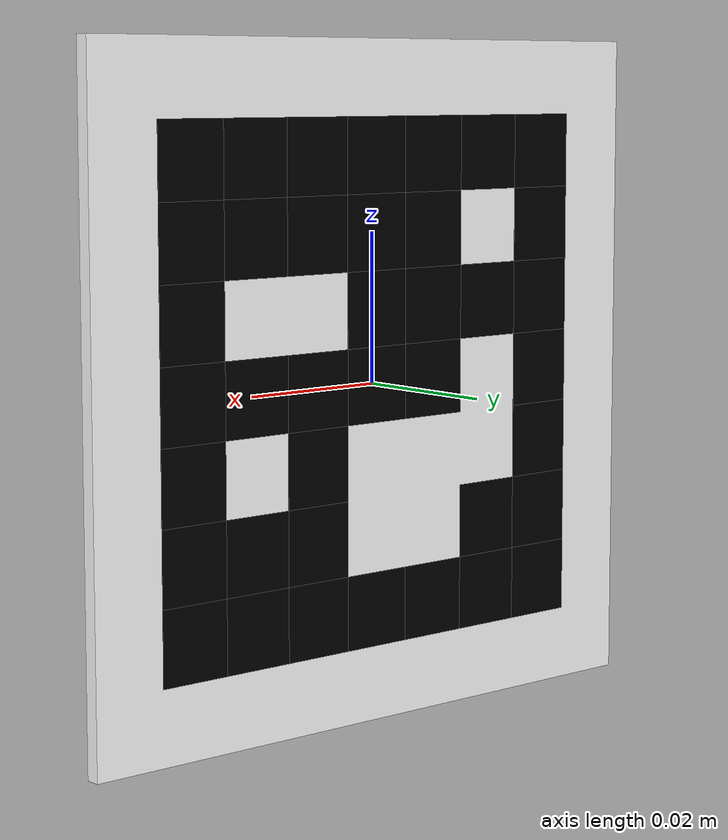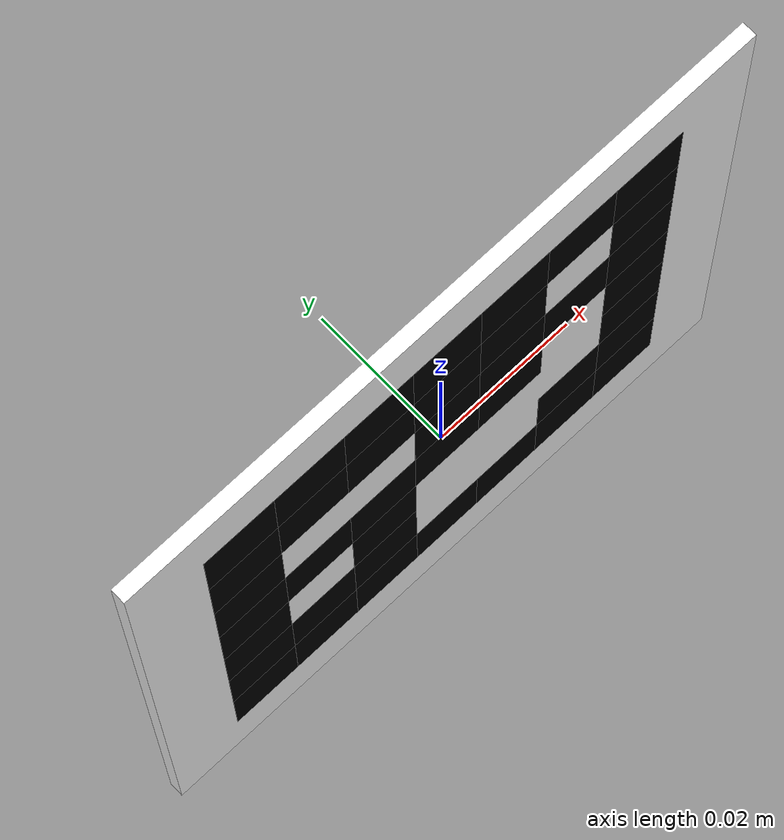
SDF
<?xml version="1.0"?>
<sdf version="1.6">
  <model name="aruco_5x5_250_id1">
    <static>true</static>
    <link name="board">
      <!-- DICT_5X5_250 marker id=1, borderBits=1. Rendered as geometry so Gazebo does not depend on texture/material loading. -->
      <!-- Back-side cells are mirrored in X so cameras viewing the rear face still see the canonical marker, not a mirror image. -->
      <collision name="collision">
        <geometry>
          <box>
            <size>0.09 0.002 0.09</size>
          </box>
        </geometry>
      </collision>

      <visual name="white_backing">
        <geometry>
          <box>
            <size>0.09 0.002 0.09</size>
          </box>
        </geometry>
        <material>
          <ambient>1 1 1 1</ambient>
          <diffuse>1 1 1 1</diffuse>
          <specular>0.1 0.1 0.1 1</specular>
        </material>
      </visual>

      <visual name="front_black_r0_c0">
        <pose>-0.0300 -0.00101 0.0300 0 0 0</pose>
        <geometry>
          <box>
            <size>0.0100 0.00002 0.0100</size>
          </box>
        </geometry>
        <material>
          <ambient>0 0 0 1</ambient>
          <diffuse>0 0 0 1</diffuse>
          <specular>0 0 0 1</specular>
        </material>
      </visual>
      <visual name="back_black_r0_c0_mirrored">
        <pose>0.0300 0.00101 0.0300 0 0 0</pose>
        <geometry>
          <box>
            <size>0.0100 0.00002 0.0100</size>
          </box>
        </geometry>
        <material>
          <ambient>0 0 0 1</ambient>
          <diffuse>0 0 0 1</diffuse>
          <specular>0 0 0 1</specular>
        </material>
      </visual>
      <visual name="front_black_r0_c1">
        <pose>-0.0200 -0.00101 0.0300 0 0 0</pose>
        <geometry>
          <box>
            <size>0.0100 0.00002 0.0100</size>
          </box>
        </geometry>
        <material>
          <ambient>0 0 0 1</ambient>
          <diffuse>0 0 0 1</diffuse>
          <specular>0 0 0 1</specular>
        </material>
      </visual>
      <visual name="back_black_r0_c1_mirrored">
        <pose>0.0200 0.00101 0.0300 0 0 0</pose>
        <geometry>
          <box>
            <size>0.0100 0.00002 0.0100</size>
          </box>
        </geometry>
        <material>
          <ambient>0 0 0 1</ambient>
          <diffuse>0 0 0 1</diffuse>
          <specular>0 0 0 1</specular>
        </material>
      </visual>
      <visual name="front_black_r0_c2">
        <pose>-0.0100 -0.00101 0.0300 0 0 0</pose>
        <geometry>
          <box>
            <size>0.0100 0.00002 0.0100</size>
          </box>
        </geometry>
        <material>
          <ambient>0 0 0 1</ambient>
          <diffuse>0 0 0 1</diffuse>
          <specular>0 0 0 1</specular>
        </material>
      </visual>
      <visual name="back_black_r0_c2_mirrored">
        <pose>0.0100 0.00101 0.0300 0 0 0</pose>
        <geometry>
          <box>
            <size>0.0100 0.00002 0.0100</size>
          </box>
        </geometry>
        <material>
          <ambient>0 0 0 1</ambient>
          <diffuse>0 0 0 1</diffuse>
          <specular>0 0 0 1</specular>
        </material>
      </visual>
      <visual name="front_black_r0_c3">
        <pose>0.0000 -0.00101 0.0300 0 0 0</pose>
        <geometry>
          <box>
            <size>0.0100 0.00002 0.0100</size>
          </box>
        </geometry>
        <material>
          <ambient>0 0 0 1</ambient>
          <diffuse>0 0 0 1</diffuse>
          <specular>0 0 0 1</specular>
        </material>
      </visual>
      <visual name="back_black_r0_c3_mirrored">
        <pose>0.0000 0.00101 0.0300 0 0 0</pose>
        <geometry>
          <box>
            <size>0.0100 0.00002 0.0100</size>
          </box>
        </geometry>
        <material>
          <ambient>0 0 0 1</ambient>
          <diffuse>0 0 0 1</diffuse>
          <specular>0 0 0 1</specular>
        </material>
      </visual>
      <visual name="front_black_r0_c4">
        <pose>0.0100 -0.00101 0.0300 0 0 0</pose>
        <geometry>
          <box>
            <size>0.0100 0.00002 0.0100</size>
          </box>
        </geometry>
        <material>
          <ambient>0 0 0 1</ambient>
          <diffuse>0 0 0 1</diffuse>
          <specular>0 0 0 1</specular>
        </material>
      </visual>
      <visual name="back_black_r0_c4_mirrored">
        <pose>-0.0100 0.00101 0.0300 0 0 0</pose>
        <geometry>
          <box>
            <size>0.0100 0.00002 0.0100</size>
          </box>
        </geometry>
        <material>
          <ambient>0 0 0 1</ambient>
          <diffuse>0 0 0 1</diffuse>
          <specular>0 0 0 1</specular>
        </material>
      </visual>
      <visual name="front_black_r0_c5">
        <pose>0.0200 -0.00101 0.0300 0 0 0</pose>
        <geometry>
          <box>
            <size>0.0100 0.00002 0.0100</size>
          </box>
        </geometry>
        <material>
          <ambient>0 0 0 1</ambient>
          <diffuse>0 0 0 1</diffuse>
          <specular>0 0 0 1</specular>
        </material>
      </visual>
      <visual name="back_black_r0_c5_mirrored">
        <pose>-0.0200 0.00101 0.0300 0 0 0</pose>
        <geometry>
          <box>
            <size>0.0100 0.00002 0.0100</size>
          </box>
        </geometry>
        <material>
          <ambient>0 0 0 1</ambient>
          <diffuse>0 0 0 1</diffuse>
          <specular>0 0 0 1</specular>
        </material>
      </visual>
      <visual name="front_black_r0_c6">
        <pose>0.0300 -0.00101 0.0300 0 0 0</pose>
        <geometry>
          <box>
            <size>0.0100 0.00002 0.0100</size>
          </box>
        </geometry>
        <material>
          <ambient>0 0 0 1</ambient>
          <diffuse>0 0 0 1</diffuse>
          <specular>0 0 0 1</specular>
        </material>
      </visual>
      <visual name="back_black_r0_c6_mirrored">
        <pose>-0.0300 0.00101 0.0300 0 0 0</pose>
        <geometry>
          <box>
            <size>0.0100 0.00002 0.0100</size>
          </box>
        </geometry>
        <material>
          <ambient>0 0 0 1</ambient>
          <diffuse>0 0 0 1</diffuse>
          <specular>0 0 0 1</specular>
        </material>
      </visual>
      <visual name="front_black_r1_c0">
        <pose>-0.0300 -0.00101 0.0200 0 0 0</pose>
        <geometry>
          <box>
            <size>0.0100 0.00002 0.0100</size>
          </box>
        </geometry>
        <material>
          <ambient>0 0 0 1</ambient>
          <diffuse>0 0 0 1</diffuse>
          <specular>0 0 0 1</specular>
        </material>
      </visual>
      <visual name="back_black_r1_c0_mirrored">
        <pose>0.0300 0.00101 0.0200 0 0 0</pose>
        <geometry>
          <box>
            <size>0.0100 0.00002 0.0100</size>
          </box>
        </geometry>
        <material>
          <ambient>0 0 0 1</ambient>
          <diffuse>0 0 0 1</diffuse>
          <specular>0 0 0 1</specular>
        </material>
      </visual>
      <visual name="front_black_r1_c1">
        <pose>-0.0200 -0.00101 0.0200 0 0 0</pose>
        <geometry>
          <box>
            <size>0.0100 0.00002 0.0100</size>
          </box>
        </geometry>
        <material>
          <ambient>0 0 0 1</ambient>
          <diffuse>0 0 0 1</diffuse>
          <specular>0 0 0 1</specular>
        </material>
      </visual>
      <visual name="back_black_r1_c1_mirrored">
        <pose>0.0200 0.00101 0.0200 0 0 0</pose>
        <geometry>
          <box>
            <size>0.0100 0.00002 0.0100</size>
          </box>
        </geometry>
        <material>
          <ambient>0 0 0 1</ambient>
          <diffuse>0 0 0 1</diffuse>
          <specular>0 0 0 1</specular>
        </material>
      </visual>
      <visual name="front_black_r1_c2">
        <pose>-0.0100 -0.00101 0.0200 0 0 0</pose>
        <geometry>
          <box>
            <size>0.0100 0.00002 0.0100</size>
          </box>
        </geometry>
        <material>
          <ambient>0 0 0 1</ambient>
          <diffuse>0 0 0 1</diffuse>
          <specular>0 0 0 1</specular>
        </material>
      </visual>
      <visual name="back_black_r1_c2_mirrored">
        <pose>0.0100 0.00101 0.0200 0 0 0</pose>
        <geometry>
          <box>
            <size>0.0100 0.00002 0.0100</size>
          </box>
        </geometry>
        <material>
          <ambient>0 0 0 1</ambient>
          <diffuse>0 0 0 1</diffuse>
          <specular>0 0 0 1</specular>
        </material>
      </visual>
      <visual name="front_black_r1_c3">
        <pose>0.0000 -0.00101 0.0200 0 0 0</pose>
        <geometry>
          <box>
            <size>0.0100 0.00002 0.0100</size>
          </box>
        </geometry>
        <material>
          <ambient>0 0 0 1</ambient>
          <diffuse>0 0 0 1</diffuse>
          <specular>0 0 0 1</specular>
        </material>
      </visual>
      <visual name="back_black_r1_c3_mirrored">
        <pose>0.0000 0.00101 0.0200 0 0 0</pose>
        <geometry>
          <box>
            <size>0.0100 0.00002 0.0100</size>
          </box>
        </geometry>
        <material>
          <ambient>0 0 0 1</ambient>
          <diffuse>0 0 0 1</diffuse>
          <specular>0 0 0 1</specular>
        </material>
      </visual>
      <visual name="front_black_r1_c4">
        <pose>0.0100 -0.00101 0.0200 0 0 0</pose>
        <geometry>
          <box>
            <size>0.0100 0.00002 0.0100</size>
          </box>
        </geometry>
        <material>
          <ambient>0 0 0 1</ambient>
          <diffuse>0 0 0 1</diffuse>
          <specular>0 0 0 1</specular>
        </material>
      </visual>
      <visual name="back_black_r1_c4_mirrored">
        <pose>-0.0100 0.00101 0.0200 0 0 0</pose>
        <geometry>
          <box>
            <size>0.0100 0.00002 0.0100</size>
          </box>
        </geometry>
        <material>
          <ambient>0 0 0 1</ambient>
          <diffuse>0 0 0 1</diffuse>
          <specular>0 0 0 1</specular>
        </material>
      </visual>
      <visual name="front_black_r1_c6">
        <pose>0.0300 -0.00101 0.0200 0 0 0</pose>
        <geometry>
          <box>
            <size>0.0100 0.00002 0.0100</size>
          </box>
        </geometry>
        <material>
          <ambient>0 0 0 1</ambient>
          <diffuse>0 0 0 1</diffuse>
          <specular>0 0 0 1</specular>
        </material>
      </visual>
      <visual name="back_black_r1_c6_mirrored">
        <pose>-0.0300 0.00101 0.0200 0 0 0</pose>
        <geometry>
          <box>
            <size>0.0100 0.00002 0.0100</size>
          </box>
        </geometry>
        <material>
          <ambient>0 0 0 1</ambient>
          <diffuse>0 0 0 1</diffuse>
          <specular>0 0 0 1</specular>
        </material>
      </visual>
      <visual name="front_black_r2_c0">
        <pose>-0.0300 -0.00101 0.0100 0 0 0</pose>
        <geometry>
          <box>
            <size>0.0100 0.00002 0.0100</size>
          </box>
        </geometry>
        <material>
          <ambient>0 0 0 1</ambient>
          <diffuse>0 0 0 1</diffuse>
          <specular>0 0 0 1</specular>
        </material>
      </visual>
      <visual name="back_black_r2_c0_mirrored">
        <pose>0.0300 0.00101 0.0100 0 0 0</pose>
        <geometry>
          <box>
            <size>0.0100 0.00002 0.0100</size>
          </box>
        </geometry>
        <material>
          <ambient>0 0 0 1</ambient>
          <diffuse>0 0 0 1</diffuse>
          <specular>0 0 0 1</specular>
        </material>
      </visual>
      <visual name="front_black_r2_c3">
        <pose>0.0000 -0.00101 0.0100 0 0 0</pose>
        <geometry>
          <box>
            <size>0.0100 0.00002 0.0100</size>
          </box>
        </geometry>
        <material>
          <ambient>0 0 0 1</ambient>
          <diffuse>0 0 0 1</diffuse>
          <specular>0 0 0 1</specular>
        </material>
      </visual>
      <visual name="back_black_r2_c3_mirrored">
        <pose>0.0000 0.00101 0.0100 0 0 0</pose>
        <geometry>
          <box>
            <size>0.0100 0.00002 0.0100</size>
          </box>
        </geometry>
        <material>
          <ambient>0 0 0 1</ambient>
          <diffuse>0 0 0 1</diffuse>
          <specular>0 0 0 1</specular>
        </material>
      </visual>
      <visual name="front_black_r2_c4">
        <pose>0.0100 -0.00101 0.0100 0 0 0</pose>
        <geometry>
          <box>
            <size>0.0100 0.00002 0.0100</size>
          </box>
        </geometry>
        <material>
          <ambient>0 0 0 1</ambient>
          <diffuse>0 0 0 1</diffuse>
          <specular>0 0 0 1</specular>
        </material>
      </visual>
      <visual name="back_black_r2_c4_mirrored">
        <pose>-0.0100 0.00101 0.0100 0 0 0</pose>
        <geometry>
          <box>
            <size>0.0100 0.00002 0.0100</size>
          </box>
        </geometry>
        <material>
          <ambient>0 0 0 1</ambient>
          <diffuse>0 0 0 1</diffuse>
          <specular>0 0 0 1</specular>
        </material>
      </visual>
      <visual name="front_black_r2_c5">
        <pose>0.0200 -0.00101 0.0100 0 0 0</pose>
        <geometry>
          <box>
            <size>0.0100 0.00002 0.0100</size>
          </box>
        </geometry>
        <material>
          <ambient>0 0 0 1</ambient>
          <diffuse>0 0 0 1</diffuse>
          <specular>0 0 0 1</specular>
        </material>
      </visual>
      <visual name="back_black_r2_c5_mirrored">
        <pose>-0.0200 0.00101 0.0100 0 0 0</pose>
        <geometry>
          <box>
            <size>0.0100 0.00002 0.0100</size>
          </box>
        </geometry>
        <material>
          <ambient>0 0 0 1</ambient>
          <diffuse>0 0 0 1</diffuse>
          <specular>0 0 0 1</specular>
        </material>
      </visual>
      <visual name="front_black_r2_c6">
        <pose>0.0300 -0.00101 0.0100 0 0 0</pose>
        <geometry>
          <box>
            <size>0.0100 0.00002 0.0100</size>
          </box>
        </geometry>
        <material>
          <ambient>0 0 0 1</ambient>
          <diffuse>0 0 0 1</diffuse>
          <specular>0 0 0 1</specular>
        </material>
      </visual>
      <visual name="back_black_r2_c6_mirrored">
        <pose>-0.0300 0.00101 0.0100 0 0 0</pose>
        <geometry>
          <box>
            <size>0.0100 0.00002 0.0100</size>
          </box>
        </geometry>
        <material>
          <ambient>0 0 0 1</ambient>
          <diffuse>0 0 0 1</diffuse>
          <specular>0 0 0 1</specular>
        </material>
      </visual>
      <visual name="front_black_r3_c0">
        <pose>-0.0300 -0.00101 0.0000 0 0 0</pose>
        <geometry>
          <box>
            <size>0.0100 0.00002 0.0100</size>
          </box>
        </geometry>
        <material>
          <ambient>0 0 0 1</ambient>
          <diffuse>0 0 0 1</diffuse>
          <specular>0 0 0 1</specular>
        </material>
      </visual>
      <visual name="back_black_r3_c0_mirrored">
        <pose>0.0300 0.00101 0.0000 0 0 0</pose>
        <geometry>
          <box>
            <size>0.0100 0.00002 0.0100</size>
          </box>
        </geometry>
        <material>
          <ambient>0 0 0 1</ambient>
          <diffuse>0 0 0 1</diffuse>
          <specular>0 0 0 1</specular>
        </material>
      </visual>
      <visual name="front_black_r3_c1">
        <pose>-0.0200 -0.00101 0.0000 0 0 0</pose>
        <geometry>
          <box>
            <size>0.0100 0.00002 0.0100</size>
          </box>
        </geometry>
        <material>
          <ambient>0 0 0 1</ambient>
          <diffuse>0 0 0 1</diffuse>
          <specular>0 0 0 1</specular>
        </material>
      </visual>
      <visual name="back_black_r3_c1_mirrored">
        <pose>0.0200 0.00101 0.0000 0 0 0</pose>
        <geometry>
          <box>
            <size>0.0100 0.00002 0.0100</size>
          </box>
        </geometry>
        <material>
          <ambient>0 0 0 1</ambient>
          <diffuse>0 0 0 1</diffuse>
          <specular>0 0 0 1</specular>
        </material>
      </visual>
      <visual name="front_black_r3_c2">
        <pose>-0.0100 -0.00101 0.0000 0 0 0</pose>
        <geometry>
          <box>
            <size>0.0100 0.00002 0.0100</size>
          </box>
        </geometry>
        <material>
          <ambient>0 0 0 1</ambient>
          <diffuse>0 0 0 1</diffuse>
          <specular>0 0 0 1</specular>
        </material>
      </visual>
      <visual name="back_black_r3_c2_mirrored">
        <pose>0.0100 0.00101 0.0000 0 0 0</pose>
        <geometry>
          <box>
            <size>0.0100 0.00002 0.0100</size>
          </box>
        </geometry>
        <material>
          <ambient>0 0 0 1</ambient>
          <diffuse>0 0 0 1</diffuse>
          <specular>0 0 0 1</specular>
        </material>
      </visual>
      <visual name="front_black_r3_c3">
        <pose>0.0000 -0.00101 0.0000 0 0 0</pose>
        <geometry>
          <box>
            <size>0.0100 0.00002 0.0100</size>
          </box>
        </geometry>
        <material>
          <ambient>0 0 0 1</ambient>
          <diffuse>0 0 0 1</diffuse>
          <specular>0 0 0 1</specular>
        </material>
      </visual>
      <visual name="back_black_r3_c3_mirrored">
        <pose>0.0000 0.00101 0.0000 0 0 0</pose>
        <geometry>
          <box>
            <size>0.0100 0.00002 0.0100</size>
          </box>
        </geometry>
        <material>
          <ambient>0 0 0 1</ambient>
          <diffuse>0 0 0 1</diffuse>
          <specular>0 0 0 1</specular>
        </material>
      </visual>
      <visual name="front_black_r3_c4">
        <pose>0.0100 -0.00101 0.0000 0 0 0</pose>
        <geometry>
          <box>
            <size>0.0100 0.00002 0.0100</size>
          </box>
        </geometry>
        <material>
          <ambient>0 0 0 1</ambient>
          <diffuse>0 0 0 1</diffuse>
          <specular>0 0 0 1</specular>
        </material>
      </visual>
      <visual name="back_black_r3_c4_mirrored">
        <pose>-0.0100 0.00101 0.0000 0 0 0</pose>
        <geometry>
          <box>
            <size>0.0100 0.00002 0.0100</size>
          </box>
        </geometry>
        <material>
          <ambient>0 0 0 1</ambient>
          <diffuse>0 0 0 1</diffuse>
          <specular>0 0 0 1</specular>
        </material>
      </visual>
      <visual name="front_black_r3_c6">
        <pose>0.0300 -0.00101 0.0000 0 0 0</pose>
        <geometry>
          <box>
            <size>0.0100 0.00002 0.0100</size>
          </box>
        </geometry>
        <material>
          <ambient>0 0 0 1</ambient>
          <diffuse>0 0 0 1</diffuse>
          <specular>0 0 0 1</specular>
        </material>
      </visual>
      <visual name="back_black_r3_c6_mirrored">
        <pose>-0.0300 0.00101 0.0000 0 0 0</pose>
        <geometry>
          <box>
            <size>0.0100 0.00002 0.0100</size>
          </box>
        </geometry>
        <material>
          <ambient>0 0 0 1</ambient>
          <diffuse>0 0 0 1</diffuse>
          <specular>0 0 0 1</specular>
        </material>
      </visual>
      <visual name="front_black_r4_c0">
        <pose>-0.0300 -0.00101 -0.0100 0 0 0</pose>
        <geometry>
          <box>
            <size>0.0100 0.00002 0.0100</size>
          </box>
        </geometry>
        <material>
          <ambient>0 0 0 1</ambient>
          <diffuse>0 0 0 1</diffuse>
          <specular>0 0 0 1</specular>
        </material>
      </visual>
      <visual name="back_black_r4_c0_mirrored">
        <pose>0.0300 0.00101 -0.0100 0 0 0</pose>
        <geometry>
          <box>
            <size>0.0100 0.00002 0.0100</size>
          </box>
        </geometry>
        <material>
          <ambient>0 0 0 1</ambient>
          <diffuse>0 0 0 1</diffuse>
          <specular>0 0 0 1</specular>
        </material>
      </visual>
      <visual name="front_black_r4_c2">
        <pose>-0.0100 -0.00101 -0.0100 0 0 0</pose>
        <geometry>
          <box>
            <size>0.0100 0.00002 0.0100</size>
          </box>
        </geometry>
        <material>
          <ambient>0 0 0 1</ambient>
          <diffuse>0 0 0 1</diffuse>
          <specular>0 0 0 1</specular>
        </material>
      </visual>
      <visual name="back_black_r4_c2_mirrored">
        <pose>0.0100 0.00101 -0.0100 0 0 0</pose>
        <geometry>
          <box>
            <size>0.0100 0.00002 0.0100</size>
          </box>
        </geometry>
        <material>
          <ambient>0 0 0 1</ambient>
          <diffuse>0 0 0 1</diffuse>
          <specular>0 0 0 1</specular>
        </material>
      </visual>
      <visual name="front_black_r4_c6">
        <pose>0.0300 -0.00101 -0.0100 0 0 0</pose>
        <geometry>
          <box>
            <size>0.0100 0.00002 0.0100</size>
          </box>
        </geometry>
        <material>
          <ambient>0 0 0 1</ambient>
          <diffuse>0 0 0 1</diffuse>
          <specular>0 0 0 1</specular>
        </material>
      </visual>
      <visual name="back_black_r4_c6_mirrored">
        <pose>-0.0300 0.00101 -0.0100 0 0 0</pose>
        <geometry>
          <box>
            <size>0.0100 0.00002 0.0100</size>
          </box>
        </geometry>
        <material>
          <ambient>0 0 0 1</ambient>
          <diffuse>0 0 0 1</diffuse>
          <specular>0 0 0 1</specular>
        </material>
      </visual>
      <visual name="front_black_r5_c0">
        <pose>-0.0300 -0.00101 -0.0200 0 0 0</pose>
        <geometry>
          <box>
            <size>0.0100 0.00002 0.0100</size>
          </box>
        </geometry>
        <material>
          <ambient>0 0 0 1</ambient>
          <diffuse>0 0 0 1</diffuse>
          <specular>0 0 0 1</specular>
        </material>
      </visual>
      <visual name="back_black_r5_c0_mirrored">
        <pose>0.0300 0.00101 -0.0200 0 0 0</pose>
        <geometry>
          <box>
            <size>0.0100 0.00002 0.0100</size>
          </box>
        </geometry>
        <material>
          <ambient>0 0 0 1</ambient>
          <diffuse>0 0 0 1</diffuse>
          <specular>0 0 0 1</specular>
        </material>
      </visual>
      <visual name="front_black_r5_c1">
        <pose>-0.0200 -0.00101 -0.0200 0 0 0</pose>
        <geometry>
          <box>
            <size>0.0100 0.00002 0.0100</size>
          </box>
        </geometry>
        <material>
          <ambient>0 0 0 1</ambient>
          <diffuse>0 0 0 1</diffuse>
          <specular>0 0 0 1</specular>
        </material>
      </visual>
      <visual name="back_black_r5_c1_mirrored">
        <pose>0.0200 0.00101 -0.0200 0 0 0</pose>
        <geometry>
          <box>
            <size>0.0100 0.00002 0.0100</size>
          </box>
        </geometry>
        <material>
          <ambient>0 0 0 1</ambient>
          <diffuse>0 0 0 1</diffuse>
          <specular>0 0 0 1</specular>
        </material>
      </visual>
      <visual name="front_black_r5_c2">
        <pose>-0.0100 -0.00101 -0.0200 0 0 0</pose>
        <geometry>
          <box>
            <size>0.0100 0.00002 0.0100</size>
          </box>
        </geometry>
        <material>
          <ambient>0 0 0 1</ambient>
          <diffuse>0 0 0 1</diffuse>
          <specular>0 0 0 1</specular>
        </material>
      </visual>
      <visual name="back_black_r5_c2_mirrored">
        <pose>0.0100 0.00101 -0.0200 0 0 0</pose>
        <geometry>
          <box>
            <size>0.0100 0.00002 0.0100</size>
          </box>
        </geometry>
        <material>
          <ambient>0 0 0 1</ambient>
          <diffuse>0 0 0 1</diffuse>
          <specular>0 0 0 1</specular>
        </material>
      </visual>
      <visual name="front_black_r5_c5">
        <pose>0.0200 -0.00101 -0.0200 0 0 0</pose>
        <geometry>
          <box>
            <size>0.0100 0.00002 0.0100</size>
          </box>
        </geometry>
        <material>
          <ambient>0 0 0 1</ambient>
          <diffuse>0 0 0 1</diffuse>
          <specular>0 0 0 1</specular>
        </material>
      </visual>
      <visual name="back_black_r5_c5_mirrored">
        <pose>-0.0200 0.00101 -0.0200 0 0 0</pose>
        <geometry>
          <box>
            <size>0.0100 0.00002 0.0100</size>
          </box>
        </geometry>
        <material>
          <ambient>0 0 0 1</ambient>
          <diffuse>0 0 0 1</diffuse>
          <specular>0 0 0 1</specular>
        </material>
      </visual>
      <visual name="front_black_r5_c6">
        <pose>0.0300 -0.00101 -0.0200 0 0 0</pose>
        <geometry>
          <box>
            <size>0.0100 0.00002 0.0100</size>
          </box>
        </geometry>
        <material>
          <ambient>0 0 0 1</ambient>
          <diffuse>0 0 0 1</diffuse>
          <specular>0 0 0 1</specular>
        </material>
      </visual>
      <visual name="back_black_r5_c6_mirrored">
        <pose>-0.0300 0.00101 -0.0200 0 0 0</pose>
        <geometry>
          <box>
            <size>0.0100 0.00002 0.0100</size>
          </box>
        </geometry>
        <material>
          <ambient>0 0 0 1</ambient>
          <diffuse>0 0 0 1</diffuse>
          <specular>0 0 0 1</specular>
        </material>
      </visual>
      <visual name="front_black_r6_c0">
        <pose>-0.0300 -0.00101 -0.0300 0 0 0</pose>
        <geometry>
          <box>
            <size>0.0100 0.00002 0.0100</size>
          </box>
        </geometry>
        <material>
          <ambient>0 0 0 1</ambient>
          <diffuse>0 0 0 1</diffuse>
          <specular>0 0 0 1</specular>
        </material>
      </visual>
      <visual name="back_black_r6_c0_mirrored">
        <pose>0.0300 0.00101 -0.0300 0 0 0</pose>
        <geometry>
          <box>
            <size>0.0100 0.00002 0.0100</size>
          </box>
        </geometry>
        <material>
          <ambient>0 0 0 1</ambient>
          <diffuse>0 0 0 1</diffuse>
          <specular>0 0 0 1</specular>
        </material>
      </visual>
      <visual name="front_black_r6_c1">
        <pose>-0.0200 -0.00101 -0.0300 0 0 0</pose>
        <geometry>
          <box>
            <size>0.0100 0.00002 0.0100</size>
          </box>
        </geometry>
        <material>
          <ambient>0 0 0 1</ambient>
          <diffuse>0 0 0 1</diffuse>
          <specular>0 0 0 1</specular>
        </material>
      </visual>
      <visual name="back_black_r6_c1_mirrored">
        <pose>0.0200 0.00101 -0.0300 0 0 0</pose>
        <geometry>
          <box>
            <size>0.0100 0.00002 0.0100</size>
          </box>
        </geometry>
        <material>
          <ambient>0 0 0 1</ambient>
          <diffuse>0 0 0 1</diffuse>
          <specular>0 0 0 1</specular>
        </material>
      </visual>
      <visual name="front_black_r6_c2">
        <pose>-0.0100 -0.00101 -0.0300 0 0 0</pose>
        <geometry>
          <box>
            <size>0.0100 0.00002 0.0100</size>
          </box>
        </geometry>
        <material>
          <ambient>0 0 0 1</ambient>
          <diffuse>0 0 0 1</diffuse>
          <specular>0 0 0 1</specular>
        </material>
      </visual>
      <visual name="back_black_r6_c2_mirrored">
        <pose>0.0100 0.00101 -0.0300 0 0 0</pose>
        <geometry>
          <box>
            <size>0.0100 0.00002 0.0100</size>
          </box>
        </geometry>
        <material>
          <ambient>0 0 0 1</ambient>
          <diffuse>0 0 0 1</diffuse>
          <specular>0 0 0 1</specular>
        </material>
      </visual>
      <visual name="front_black_r6_c3">
        <pose>0.0000 -0.00101 -0.0300 0 0 0</pose>
        <geometry>
          <box>
            <size>0.0100 0.00002 0.0100</size>
          </box>
        </geometry>
        <material>
          <ambient>0 0 0 1</ambient>
          <diffuse>0 0 0 1</diffuse>
          <specular>0 0 0 1</specular>
        </material>
      </visual>
      <visual name="back_black_r6_c3_mirrored">
        <pose>0.0000 0.00101 -0.0300 0 0 0</pose>
        <geometry>
          <box>
            <size>0.0100 0.00002 0.0100</size>
          </box>
        </geometry>
        <material>
          <ambient>0 0 0 1</ambient>
          <diffuse>0 0 0 1</diffuse>
          <specular>0 0 0 1</specular>
        </material>
      </visual>
      <visual name="front_black_r6_c4">
        <pose>0.0100 -0.00101 -0.0300 0 0 0</pose>
        <geometry>
          <box>
            <size>0.0100 0.00002 0.0100</size>
          </box>
        </geometry>
        <material>
          <ambient>0 0 0 1</ambient>
          <diffuse>0 0 0 1</diffuse>
          <specular>0 0 0 1</specular>
        </material>
      </visual>
      <visual name="back_black_r6_c4_mirrored">
        <pose>-0.0100 0.00101 -0.0300 0 0 0</pose>
        <geometry>
          <box>
            <size>0.0100 0.00002 0.0100</size>
          </box>
        </geometry>
        <material>
          <ambient>0 0 0 1</ambient>
          <diffuse>0 0 0 1</diffuse>
          <specular>0 0 0 1</specular>
        </material>
      </visual>
      <visual name="front_black_r6_c5">
        <pose>0.0200 -0.00101 -0.0300 0 0 0</pose>
        <geometry>
          <box>
            <size>0.0100 0.00002 0.0100</size>
          </box>
        </geometry>
        <material>
          <ambient>0 0 0 1</ambient>
          <diffuse>0 0 0 1</diffuse>
          <specular>0 0 0 1</specular>
        </material>
      </visual>
      <visual name="back_black_r6_c5_mirrored">
        <pose>-0.0200 0.00101 -0.0300 0 0 0</pose>
        <geometry>
          <box>
            <size>0.0100 0.00002 0.0100</size>
          </box>
        </geometry>
        <material>
          <ambient>0 0 0 1</ambient>
          <diffuse>0 0 0 1</diffuse>
          <specular>0 0 0 1</specular>
        </material>
      </visual>
      <visual name="front_black_r6_c6">
        <pose>0.0300 -0.00101 -0.0300 0 0 0</pose>
        <geometry>
          <box>
            <size>0.0100 0.00002 0.0100</size>
          </box>
        </geometry>
        <material>
          <ambient>0 0 0 1</ambient>
          <diffuse>0 0 0 1</diffuse>
          <specular>0 0 0 1</specular>
        </material>
      </visual>
      <visual name="back_black_r6_c6_mirrored">
        <pose>-0.0300 0.00101 -0.0300 0 0 0</pose>
        <geometry>
          <box>
            <size>0.0100 0.00002 0.0100</size>
          </box>
        </geometry>
        <material>
          <ambient>0 0 0 1</ambient>
          <diffuse>0 0 0 1</diffuse>
          <specular>0 0 0 1</specular>
        </material>
      </visual>
    </link>
  </model>
</sdf>
